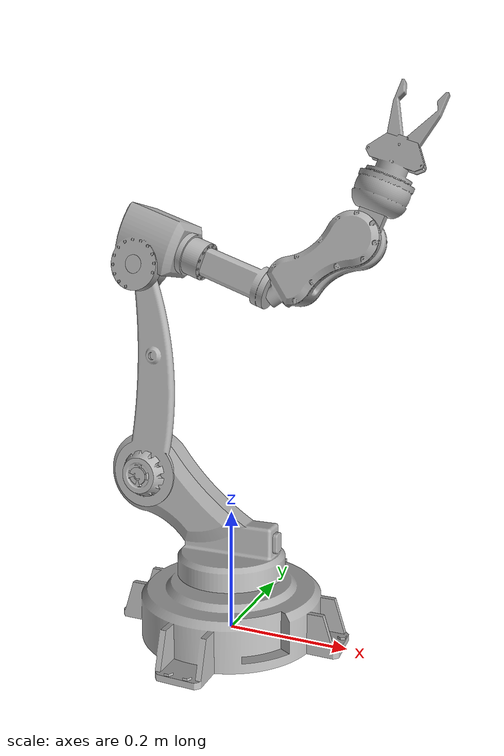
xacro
<?xml version="1.0"?>
<robot xmlns:xacro="http://www.ros.org/wiki/xacro" name="Robotic">
    <xacro:arg name="initial_positions_file" default="initial_positions.yaml" />

    <!-- Import Robotic urdf file -->
    <xacro:include filename="$(find robot_control)/urdf/Robotic.xacro" />

    <!-- Import control_xacro -->
    <xacro:include filename="Robotic.ros2_control.xacro" />

    <xacro:Robotic_ros2_control name="FakeSystem" initial_positions_file="$(arg initial_positions_file)"/>

</robot>

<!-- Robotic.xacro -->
<robot name="Robotic" xmlns:xacro="http://www.ros.org/wiki/xacro">

<xacro:include filename="$(find robot_control)/urdf/materials.xacro" />
<xacro:include filename="$(find robot_control)/urdf/Robotic.trans" />
<xacro:include filename="$(find robot_control)/urdf/Robotic.gazebo" />

<link name="world"/>

<joint name="world_joint" type="fixed">
  <parent link="world"/>
  <child link="base_link"/>
  <origin xyz="0 0 0" rpy="0 0 0"/>
</joint>

<link name="base_link">
  <inertial>
    <origin xyz="0.0007806396519895978 -0.0007806396451176682 0.04859351552798209" rpy="0 0 0"/>
    <mass value="12.47367775880617"/>
    <inertia ixx="0.118752" iyy="0.118752" izz="0.218412" ixy="0.000272" iyz="-0.000713" ixz="0.000713"/>
  </inertial>
  <visual>
    <origin xyz="0 0 0" rpy="0 0 0"/>
    <geometry>
      <mesh filename="package://robot_control/meshes/base_link.stl" scale="0.001 0.001 0.001"/>
    </geometry>
    <material name="silver"/>
  </visual>
  <collision>
    <origin xyz="0 0 0" rpy="0 0 0"/>
    <geometry>
      <mesh filename="package://robot_control/meshes/base_link.stl" scale="0.001 0.001 0.001"/>
    </geometry>
  </collision>
</link>

<link name="Component2_1">
  <inertial>
    <origin xyz="-0.017857616220766044 0.054057204262383085 0.06290227912529593" rpy="0 0 0"/>
    <mass value="18.09836147401845"/>
    <inertia ixx="0.177958" iyy="0.101915" izz="0.127406" ixy="0.027164" iyz="-0.067671" ixz="0.022129"/>
  </inertial>
  <visual>
    <origin xyz="0 0 0" rpy="0 0 0"/> <geometry>
      <mesh filename="package://robot_control/meshes/Component2_1.stl" scale="0.001 0.001 0.001"/>
    </geometry>
    <material name="silver"/>
  </visual>
  <collision>
    <origin xyz="0 0 0" rpy="0 0 0"/> <geometry>
      <mesh filename="package://robot_control/meshes/Component2_1.stl" scale="0.001 0.001 0.001"/>
    </geometry>
  </collision>
</link>

<link name="Component3_1">
  <inertial>
    <origin xyz="0.056604318197619276 -0.07232932500589419 0.1074091525160209" rpy="0 0 0"/>
    <mass value="6.899829498653834"/>
    <inertia ixx="0.13119" iyy="0.091516" izz="0.047481" ixy="0.011146" iyz="0.058201" ixz="-0.015523"/>
  </inertial>
  <visual>
    <origin xyz="0 0 0" rpy="0 0 0"/> <geometry>
      <mesh filename="package://robot_control/meshes/Component3_1.stl" scale="0.001 0.001 0.001"/>
    </geometry>
    <material name="silver"/>
  </visual>
  <collision>
    <origin xyz="0 0 0" rpy="0 0 0"/> <geometry>
      <mesh filename="package://robot_control/meshes/Component3_1.stl" scale="0.001 0.001 0.001"/>
    </geometry>
  </collision>
</link>

<link name="Component4_1">
  <inertial>
    <origin xyz="-0.037229257165138384 0.04065002788003971 0.018985873388544516" rpy="0 0 0"/>
    <mass value="9.99270875492589"/>
    <inertia ixx="0.048518" iyy="0.021455" izz="0.043108" ixy="0.00925" iyz="0.012379" ixz="-0.002929"/>
  </inertial>
  <visual>
    <origin xyz="0 0 0" rpy="0 0 0"/>
    <geometry>
      <mesh filename="package://robot_control/meshes/Component4_1.stl" scale="0.001 0.001 0.001"/>
    </geometry>
    <material name="silver"/>
  </visual>
  <collision>
    <origin xyz="0 0 0" rpy="0 0 0"/>
    <geometry>
      <mesh filename="package://robot_control/meshes/Component4_1.stl" scale="0.001 0.001 0.001"/>
    </geometry>
  </collision>
</link>

<link name="Component5_1">
  <visual>
    <origin xyz="-0.2 0.3 -0.01" rpy="1.5708 0 -1.5708"/>
    <geometry>
      <mesh filename="package://robot_control/meshes/Component5_1.stl" scale="0.001 0.001 0.001"/>
    </geometry>
    <material name="silver"/>
  </visual>
  <collision>
    <origin xyz="-0.2 0.3 -0.01" rpy="1.5708 0 -1.5708"/>
    <geometry>
      <mesh filename="package://robot_control/meshes/Component5_1.stl" scale="0.001 0.001 0.001"/>
    </geometry>
  </collision>
</link>

<link name="Component6_1">
  <visual>
    <origin xyz="0 0 0" rpy="0 0 0"/>
    <geometry>
      <mesh filename="package://robot_control/meshes/Component6_1.stl" scale="0.001 0.001 0.001"/>
    </geometry>
    <material name="silver"/>
  </visual>
  <collision>
    <origin xyz="0 0 0" rpy="0 0 0"/>
    <geometry>
      <mesh filename="package://robot_control/meshes/Component6_1.stl" scale="0.001 0.001 0.001"/>
    </geometry>
  </collision>
</link>

<link name="Component7_1">
  <visual>
    <origin xyz="0 0 0" rpy="0 0 0"/>
    <geometry>
      <mesh filename="package://robot_control/meshes/Component7_1.stl" scale="0.001 0.001 0.001"/>
    </geometry>
    <material name="silver"/>
  </visual>
  <collision>
    <origin xyz="0 0 0" rpy="0 0 0"/>
    <geometry>
      <mesh filename="package://robot_control/meshes/Component7_1.stl" scale="0.001 0.001 0.001"/>
    </geometry>
  </collision>
</link>

<link name="Component8_1">
  <visual>
    <origin xyz="0 0 0" rpy="0 0 0"/>
    <geometry>
      <mesh filename="package://robot_control/meshes/Component8_1.stl" scale="0.001 0.001 0.001"/>
    </geometry>
    <material name="silver"/>
  </visual>
  <collision>
    <origin xyz="0 0 0" rpy="0 0 0"/>
    <geometry>
      <mesh filename="package://robot_control/meshes/Component8_1.stl" scale="0.001 0.001 0.001"/>
    </geometry>
  </collision>
</link>

<link name="Component8_Mirror__1">
  <inertial>
    <origin xyz="0.009343421801771373 0.02316394746506706 -0.022928258768890597" rpy="0 0 0"/>
    <mass value="0.17272823257156844"/>
    <inertia ixx="0.000115" iyy="2.2e-05" izz="0.000111" ixy="-2.2e-05" iyz="2.8e-05" ixz="6e-06"/>
  </inertial>
  <visual>
    <origin xyz="0 0 0" rpy="0 0 0"/>
    <geometry>
      <mesh filename="package://robot_control/meshes/Component8_Mirror__1.stl" scale="0.001 0.001 0.001"/>
    </geometry>
    <material name="silver"/>
  </visual>
  <collision>
    <origin xyz="0 0 0" rpy="0 0 0"/>
    <geometry>
      <mesh filename="package://robot_control/meshes/Component8_Mirror__1.stl" scale="0.001 0.001 0.001"/>
    </geometry>
  </collision>
</link>

<joint name="Revolute 2" type="continuous">
  <origin xyz="0 0 0.097755" rpy="0 0 0"/> <parent link="base_link"/>
  <child link="Component2_1"/>
  <axis xyz="0.0 0.0 1.0"/>
</joint>

<joint name="Revolute 3" type="continuous">
  <origin xyz="-0.150 -0.0505 0.160" rpy="0 1.57 1.57"/>
  <parent link="Component2_1"/>
  <child link="Component3_1"/>
  <axis xyz="0 0 1"/>
</joint>

<joint name="Revolute 4" type="continuous">
  <origin xyz="-0.350 0 0" rpy="0 0 -1.172"/>
  <parent link="Component3_1"/>
  <child link="Component4_1"/>
  <axis xyz="0 0 1"/>
</joint>

<joint name="Revolute 5" type="revolute">
  <origin xyz="0.221 -0.045 0.047" rpy="0 0 0"/> <parent link="Component4_1"/>
  <child link="Component5_1"/>
  <axis xyz="0 0 1"/>
  <limit lower="-1.57" upper="1.57" effort="100" velocity="1.0"/>
</joint>

<joint name="Revolute 6" type="revolute">
  <origin xyz="0.1 -0.06 -0.01" rpy="0 0 0"/>
  <parent link="Component5_1"/>
  <child link="Component6_1"/>
  <axis xyz="0 1 0"/> <limit lower="-1.57" upper="1.57" effort="100" velocity="1.0"/>
</joint>

<joint name="Revolute 7" type="revolute">
  <origin xyz="0 -0.15 0.02" rpy="0 1.5708 -1.5708"/>
  <parent link="Component6_1"/>
  <child link="Component7_1"/>
  <axis xyz="0 0 1"/>
  <limit lower="-3.14" upper="3.14" effort="100" velocity="1.0"/>
</joint>

<joint name="Revolute 8" type="revolute">
  <origin xyz="-0.018 0 0.05" rpy="1.5708 0 1.5708"/>
  <parent link="Component7_1"/>
  <child link="Component8_1"/>
  <axis xyz="0 0 1"/>
  <limit lower="-0.5" upper="0.5" effort="50" velocity="0.5"/>
</joint>

<joint name="Revolute 9" type="revolute">
  <origin xyz="-0.013 0 0.05" rpy="-1.5708 0 -1.5708"/>
  <parent link="Component7_1"/>
  <child link="Component8_Mirror__1"/>
  <axis xyz="0 0 -1"/>
  <limit lower="-0.5" upper="0.5" effort="50" velocity="0.5"/>
</joint>
</robot>

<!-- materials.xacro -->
<robot name="Robotic" xmlns:xacro="http://www.ros.org/wiki/xacro" >

<material name="silver">
  <color rgba="0.700 0.700 0.700 1.000"/>
</material>

</robot>

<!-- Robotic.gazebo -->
<robot name="Robotic" xmlns:xacro="http://www.ros.org/wiki/xacro" >

<xacro:property name="body_color" value="Gazebo/Silver" />

<gazebo>
  <plugin name="control" filename="libgazebo_ros_control.so"/>
</gazebo>
<gazebo reference="base_link">
  <material>${body_color}</material>
  <mu1>0.2</mu1>
  <mu2>0.2</mu2>
  <selfCollide>true</selfCollide>
  <gravity>true</gravity>
</gazebo>

<gazebo reference="Component2_1">
  <material>${body_color}</material>
  <mu1>0.2</mu1>
  <mu2>0.2</mu2>
  <selfCollide>true</selfCollide>
</gazebo>

<gazebo reference="Component3_1">
  <material>${body_color}</material>
  <mu1>0.2</mu1>
  <mu2>0.2</mu2>
  <selfCollide>true</selfCollide>
</gazebo>

<gazebo reference="Component4_1">
  <material>${body_color}</material>
  <mu1>0.2</mu1>
  <mu2>0.2</mu2>
  <selfCollide>true</selfCollide>
</gazebo>

<gazebo reference="Component5_1">
  <material>${body_color}</material>
  <mu1>0.2</mu1>
  <mu2>0.2</mu2>
  <selfCollide>true</selfCollide>
</gazebo>

<gazebo reference="Component6_1">
  <material>${body_color}</material>
  <mu1>0.2</mu1>
  <mu2>0.2</mu2>
  <selfCollide>true</selfCollide>
</gazebo>

<gazebo reference="Component7_1">
  <material>${body_color}</material>
  <mu1>0.2</mu1>
  <mu2>0.2</mu2>
  <selfCollide>true</selfCollide>
</gazebo>

<gazebo reference="Component8_Mirror__1">
  <material>${body_color}</material>
  <mu1>0.2</mu1>
  <mu2>0.2</mu2>
  <selfCollide>true</selfCollide>
</gazebo>

</robot>
